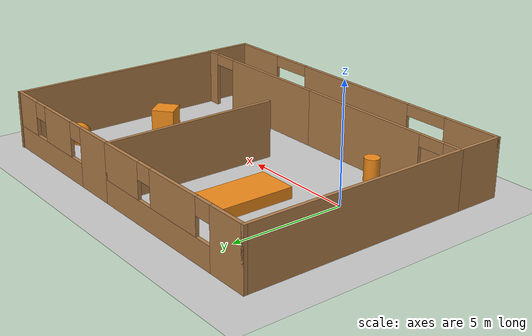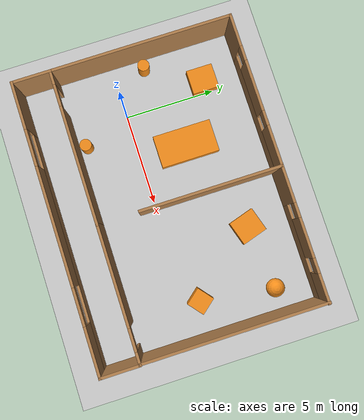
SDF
<sdf version="1.7">
 <world name="default">
  <light name="sun" type="directional">
   <pose>0 0 10 0 -0 0</pose>
   <diffuse>0.8 0.8 0.8 1</diffuse>
   <specular>0.2 0.2 0.2 1</specular>
   <attenuation>
    <range>1000</range>
    <constant>0.9</constant>
    <linear>0.01</linear>
    <quadratic>0.001</quadratic>
   </attenuation>
   <direction>-0.5 0.1 -0.9</direction>
   <spot><inner_angle>0</inner_angle><outer_angle>0</outer_angle><falloff>0</falloff></spot>
  </light>
  <model name="ground_plane">
   <static>1</static>
   <link name="link">
    <collision name="collision">
     <geometry><plane><normal>0 0 1</normal><size>100 100</size></plane></geometry>
     <surface>
      <contact><collide_bitmask>65535</collide_bitmask></contact>
      <friction><ode><mu>100</mu><mu2>50</mu2></ode></friction>
     </surface>
    </collision>
    <visual name="visual">
     <cast_shadows>0</cast_shadows>
     <geometry><plane><normal>0 0 1</normal><size>100 100</size></plane></geometry>
     <material>
      <script><uri>file://media/materials/scripts/gazebo.material</uri><name>Gazebo/Grey</name></script>
     </material>
    </visual>
   </link>
  </model>
  <gravity>0 0 -9.8</gravity>
  <magnetic_field>6e-06 2.3e-05 -4.2e-05</magnetic_field>
  <atmosphere type="adiabatic"/>
  <physics type="ode">
   <max_step_size>0.001</max_step_size>
   <real_time_factor>1</real_time_factor>
   <real_time_update_rate>1000</real_time_update_rate>
  </physics>
  <scene><ambient>0.4 0.4 0.4 1</ambient><background>0.7 0.7 0.7 1</background><shadows>1</shadows></scene>
  <spherical_coordinates>
   <surface_model>EARTH_WGS84</surface_model>
   <latitude_deg>0</latitude_deg>
   <longitude_deg>0</longitude_deg>
   <elevation>0</elevation>
   <heading_deg>0</heading_deg>
  </spherical_coordinates>
  <model name="Room">
   <pose>4.85226 0.821012 0 0 -0 0</pose>
   <link name="Wall_24">
    <collision name="Wall_24_Collision">
     <geometry><box><size>10 0.15 2.5</size></box></geometry>
     <pose>0 0 1.25 0 -0 0</pose>
    </collision>
    <visual name="Wall_24_Visual">
     <pose>0 0 1.25 0 -0 0</pose>
     <geometry><box><size>10 0.15 2.5</size></box></geometry>
     <material>
      <script><uri>file://media/materials/scripts/gazebo.material</uri><name>Gazebo/Wood</name></script>
      <ambient>1 1 1 1</ambient>
     </material>
     <meta><layer>0</layer></meta>
    </visual>
    <pose>-7.80006 1.01556 0 0 -0 -1.5708</pose>
   </link>
   <link name="Wall_26">
    <pose>-3.62506 5.94056 0 0 -0 0</pose>
    <visual name="Wall_26_Visual_0">
     <pose>-3.34006 0 1.25 0 -0 0</pose>
     <geometry><box><size>1.81987 0.15 2.5</size></box></geometry>
     <material>
      <script><uri>file://media/materials/scripts/gazebo.material</uri><name>Gazebo/Wood</name></script>
      <ambient>1 1 1 1</ambient>
     </material>
     <meta><layer>0</layer></meta>
    </visual>
    <collision name="Wall_26_Collision_0">
     <geometry><box><size>1.81987 0.15 2.5</size></box></geometry>
     <pose>-3.34006 0 1.25 0 -0 0</pose>
    </collision>
    <visual name="Wall_26_Visual_1">
     <pose>0.909938 0 0.5 0 -0 0</pose>
     <geometry><box><size>6.68013 0.15 1</size></box></geometry>
     <material>
      <script><uri>file://media/materials/scripts/gazebo.material</uri><name>Gazebo/Wood</name></script>
      <ambient>1 1 1 1</ambient>
     </material>
     <meta><layer>0</layer></meta>
    </visual>
    <collision name="Wall_26_Collision_1">
     <geometry><box><size>6.68013 0.15 1</size></box></geometry>
     <pose>0.909938 0 0.5 0 -0 0</pose>
    </collision>
    <visual name="Wall_26_Visual_2">
     <pose>-0.230125 0 1.75 0 -0 0</pose>
     <geometry><box><size>2.8 0.15 1.5</size></box></geometry>
     <material>
      <script><uri>file://media/materials/scripts/gazebo.material</uri><name>Gazebo/Wood</name></script>
      <ambient>1 1 1 1</ambient>
     </material>
     <meta><layer>0</layer></meta>
    </visual>
    <collision name="Wall_26_Collision_2">
     <geometry><box><size>2.8 0.15 1.5</size></box></geometry>
     <pose>-0.230125 0 1.75 0 -0 0</pose>
    </collision>
    <visual name="Wall_26_Visual_3">
     <pose>3.10994 0 1.75 0 -0 0</pose>
     <geometry><box><size>2.28012 0.15 1.5</size></box></geometry>
     <material>
      <script><uri>file://media/materials/scripts/gazebo.material</uri><name>Gazebo/Wood</name></script>
      <ambient>1 1 1 1</ambient>
     </material>
     <meta><layer>0</layer></meta>
    </visual>
    <collision name="Wall_26_Collision_3">
     <geometry><box><size>2.28012 0.15 1.5</size></box></geometry>
     <pose>3.10994 0 1.75 0 -0 0</pose>
    </collision>
    <visual name="Wall_26_Visual_4">
     <pose>-2.03012 0 2.15 0 -0 0</pose>
     <geometry><box><size>0.8 0.15 0.7</size></box></geometry>
     <material>
      <script><uri>file://media/materials/scripts/gazebo.material</uri><name>Gazebo/Wood</name></script>
      <ambient>1 1 1 1</ambient>
     </material>
     <meta><layer>0</layer></meta>
    </visual>
    <collision name="Wall_26_Collision_4">
     <geometry><box><size>0.8 0.15 0.7</size></box></geometry>
     <pose>-2.03012 0 2.15 0 -0 0</pose>
    </collision>
    <visual name="Wall_26_Visual_5">
     <pose>1.56987 0 2.15 0 -0 0</pose>
     <geometry><box><size>0.8 0.15 0.7</size></box></geometry>
     <material>
      <script><uri>file://media/materials/scripts/gazebo.material</uri><name>Gazebo/Wood</name></script>
      <ambient>1 1 1 1</ambient>
     </material>
     <meta><layer>0</layer></meta>
    </visual>
    <collision name="Wall_26_Collision_5">
     <geometry><box><size>0.8 0.15 0.7</size></box></geometry>
     <pose>1.56987 0 2.15 0 -0 0</pose>
    </collision>
   </link>
   <link name="Wall_28">
    <pose>-3.62506 -3.90944 0 0 -0 3.14159</pose>
    <visual name="Wall_28_Visual_0">
     <pose>-1.01597 0 1.25 0 -0 0</pose>
     <geometry><box><size>6.46806 0.15 2.5</size></box></geometry>
     <material>
      <script><uri>file://media/materials/scripts/gazebo.material</uri><name>Gazebo/Wood</name></script>
      <ambient>1 1 1 1</ambient>
     </material>
     <meta><layer>0</layer></meta>
    </visual>
    <collision name="Wall_28_Collision_0">
     <geometry><box><size>6.46806 0.15 2.5</size></box></geometry>
     <pose>-1.01597 0 1.25 0 -0 0</pose>
    </collision>
    <visual name="Wall_28_Visual_1">
     <pose>3.83403 0 1.25 0 -0 0</pose>
     <geometry><box><size>0.831936 0.15 2.5</size></box></geometry>
     <material>
      <script><uri>file://media/materials/scripts/gazebo.material</uri><name>Gazebo/Wood</name></script>
      <ambient>1 1 1 1</ambient>
     </material>
     <meta><layer>0</layer></meta>
    </visual>
    <collision name="Wall_28_Collision_1">
     <geometry><box><size>0.831936 0.15 2.5</size></box></geometry>
     <pose>3.83403 0 1.25 0 -0 0</pose>
    </collision>
    <visual name="Wall_28_Visual_2">
     <pose>2.81806 0 2.25 0 -0 0</pose>
     <geometry><box><size>1.2 0.15 0.5</size></box></geometry>
     <material>
      <script><uri>file://media/materials/scripts/gazebo.material</uri><name>Gazebo/Wood</name></script>
      <ambient>1 1 1 1</ambient>
     </material>
     <meta><layer>0</layer></meta>
    </visual>
    <collision name="Wall_28_Collision_2">
     <geometry><box><size>1.2 0.15 0.5</size></box></geometry>
     <pose>2.81806 0 2.25 0 -0 0</pose>
    </collision>
   </link>
   <link name="Wall_30">
    <pose>4.17319 5.94056 0 0 -0 0</pose>
    <visual name="Wall_30_Visual_0">
     <pose>-2.67524 0 1.25 0 -0 0</pose>
     <geometry><box><size>2.04601 0.15 2.5</size></box></geometry>
     <material>
      <script><uri>file://media/materials/scripts/gazebo.material</uri><name>Gazebo/Wood</name></script>
      <ambient>1 1 1 1</ambient>
     </material>
     <meta><layer>0</layer></meta>
    </visual>
    <collision name="Wall_30_Collision_0">
     <geometry><box><size>2.04601 0.15 2.5</size></box></geometry>
     <pose>-2.67524 0 1.25 0 -0 0</pose>
    </collision>
    <visual name="Wall_30_Visual_1">
     <pose>1.023 0 0.5 0 -0 0</pose>
     <geometry><box><size>5.35049 0.15 1</size></box></geometry>
     <material>
      <script><uri>file://media/materials/scripts/gazebo.material</uri><name>Gazebo/Wood</name></script>
      <ambient>1 1 1 1</ambient>
     </material>
     <meta><layer>0</layer></meta>
    </visual>
    <collision name="Wall_30_Collision_1">
     <geometry><box><size>5.35049 0.15 1</size></box></geometry>
     <pose>1.023 0 0.5 0 -0 0</pose>
    </collision>
    <visual name="Wall_30_Visual_2">
     <pose>0.21185 0 1.75 0 -0 0</pose>
     <geometry><box><size>2.12818 0.15 1.5</size></box></geometry>
     <material>
      <script><uri>file://media/materials/scripts/gazebo.material</uri><name>Gazebo/Wood</name></script>
      <ambient>1 1 1 1</ambient>
     </material>
     <meta><layer>0</layer></meta>
    </visual>
    <collision name="Wall_30_Collision_2">
     <geometry><box><size>2.12818 0.15 1.5</size></box></geometry>
     <pose>0.21185 0 1.75 0 -0 0</pose>
    </collision>
    <visual name="Wall_30_Visual_3">
     <pose>2.88709 0 1.75 0 -0 0</pose>
     <geometry><box><size>1.62231 0.15 1.5</size></box></geometry>
     <material>
      <script><uri>file://media/materials/scripts/gazebo.material</uri><name>Gazebo/Wood</name></script>
      <ambient>1 1 1 1</ambient>
     </material>
     <meta><layer>0</layer></meta>
    </visual>
    <collision name="Wall_30_Collision_3">
     <geometry><box><size>1.62231 0.15 1.5</size></box></geometry>
     <pose>2.88709 0 1.75 0 -0 0</pose>
    </collision>
    <visual name="Wall_30_Visual_4">
     <pose>-1.25224 0 2.15 0 -0 0</pose>
     <geometry><box><size>0.8 0.15 0.7</size></box></geometry>
     <material>
      <script><uri>file://media/materials/scripts/gazebo.material</uri><name>Gazebo/Wood</name></script>
      <ambient>1 1 1 1</ambient>
     </material>
     <meta><layer>0</layer></meta>
    </visual>
    <collision name="Wall_30_Collision_4">
     <geometry><box><size>0.8 0.15 0.7</size></box></geometry>
     <pose>-1.25224 0 2.15 0 -0 0</pose>
    </collision>
    <visual name="Wall_30_Visual_5">
     <pose>1.67594 0 2.15 0 -0 0</pose>
     <geometry><box><size>0.8 0.15 0.7</size></box></geometry>
     <material>
      <script><uri>file://media/materials/scripts/gazebo.material</uri><name>Gazebo/Wood</name></script>
      <ambient>1 1 1 1</ambient>
     </material>
     <meta><layer>0</layer></meta>
    </visual>
    <collision name="Wall_30_Collision_5">
     <geometry><box><size>0.8 0.15 0.7</size></box></geometry>
     <pose>1.67594 0 2.15 0 -0 0</pose>
    </collision>
   </link>
   <link name="Wall_31">
    <collision name="Wall_31_Collision">
     <geometry><box><size>10 0.15 2.5</size></box></geometry>
     <pose>0 0 1.25 0 -0 0</pose>
    </collision>
    <visual name="Wall_31_Visual">
     <pose>0 0 1.25 0 -0 0</pose>
     <geometry><box><size>10 0.15 2.5</size></box></geometry>
     <material>
      <script><uri>file://media/materials/scripts/gazebo.material</uri><name>Gazebo/Wood</name></script>
      <ambient>1 1 1 1</ambient>
     </material>
     <meta><layer>0</layer></meta>
    </visual>
    <pose>7.76194 1.05006 0 0 -0 -1.5708</pose>
   </link>
   <link name="Wall_32">
    <pose>4.17319 -3.90944 0 0 -0 3.14159</pose>
    <visual name="Wall_32_Visual_0">
     <pose>-3.32697 0 1.25 0 -0 0</pose>
     <geometry><box><size>0.742563 0.15 2.5</size></box></geometry>
     <material>
      <script><uri>file://media/materials/scripts/gazebo.material</uri><name>Gazebo/Wood</name></script>
      <ambient>1 1 1 1</ambient>
     </material>
     <meta><layer>0</layer></meta>
    </visual>
    <collision name="Wall_32_Collision_0">
     <geometry><box><size>0.742563 0.15 2.5</size></box></geometry>
     <pose>-3.32697 0 1.25 0 -0 0</pose>
    </collision>
    <visual name="Wall_32_Visual_1">
     <pose>0.971281 0 1.25 0 -0 0</pose>
     <geometry><box><size>5.45394 0.15 2.5</size></box></geometry>
     <material>
      <script><uri>file://media/materials/scripts/gazebo.material</uri><name>Gazebo/Wood</name></script>
      <ambient>1 1 1 1</ambient>
     </material>
     <meta><layer>0</layer></meta>
    </visual>
    <collision name="Wall_32_Collision_1">
     <geometry><box><size>5.45394 0.15 2.5</size></box></geometry>
     <pose>0.971281 0 1.25 0 -0 0</pose>
    </collision>
    <visual name="Wall_32_Visual_2">
     <pose>-2.35569 0 2.25 0 -0 0</pose>
     <geometry><box><size>1.2 0.15 0.5</size></box></geometry>
     <material>
      <script><uri>file://media/materials/scripts/gazebo.material</uri><name>Gazebo/Wood</name></script>
      <ambient>1 1 1 1</ambient>
     </material>
     <meta><layer>0</layer></meta>
    </visual>
    <collision name="Wall_32_Collision_2">
     <geometry><box><size>1.2 0.15 0.5</size></box></geometry>
     <pose>-2.35569 0 2.25 0 -0 0</pose>
    </collision>
   </link>
   <link name="Wall_34">
    <collision name="Wall_34_Collision">
     <geometry><box><size>7.75 0.15 2.5</size></box></geometry>
     <pose>0 0 1.25 0 -0 0</pose>
    </collision>
    <visual name="Wall_34_Visual">
     <pose>0 0 1.25 0 -0 0</pose>
     <geometry><box><size>7.75 0.15 2.5</size></box></geometry>
     <material>
      <script><uri>file://media/materials/scripts/gazebo.material</uri><name>Gazebo/Wood</name></script>
      <ambient>1 1 1 1</ambient>
     </material>
     <meta><layer>0</layer></meta>
    </visual>
    <pose>0.549937 2.14056 0 0 -0 -1.5708</pose>
   </link>
   <link name="Wall_36">
    <collision name="Wall_36_Collision">
     <geometry><box><size>2.2155 0.15 2.5</size></box></geometry>
     <pose>0 0 1.25 0 -0 0</pose>
    </collision>
    <visual name="Wall_36_Visual">
     <pose>0 0 1.25 0 -0 0</pose>
     <geometry><box><size>2.2155 0.15 2.5</size></box></geometry>
     <material>
      <script><uri>file://media/materials/scripts/gazebo.material</uri><name>Gazebo/Wood</name></script>
      <ambient>1 1 1 1</ambient>
     </material>
     <meta><layer>0</layer></meta>
    </visual>
    <pose>-7.80006 -4.94219 0 0 -0 -1.5708</pose>
   </link>
   <link name="Wall_38">
    <pose>-6.3e-05 -5.97494 0 0 -0 0</pose>
    <visual name="Wall_38_Visual_0">
     <pose>-6.55503 0 1.25 0 -0 0</pose>
     <geometry><box><size>2.63994 0.15 2.5</size></box></geometry>
     <material>
      <script><uri>file://media/materials/scripts/gazebo.material</uri><name>Gazebo/Wood</name></script>
      <ambient>1 1 1 1</ambient>
     </material>
     <meta><layer>0</layer></meta>
    </visual>
    <collision name="Wall_38_Collision_0">
     <geometry><box><size>2.63994 0.15 2.5</size></box></geometry>
     <pose>-6.55503 0 1.25 0 -0 0</pose>
    </collision>
    <visual name="Wall_38_Visual_1">
     <pose>1.31997 0 0.5 0 -0 0</pose>
     <geometry><box><size>13.1101 0.15 1</size></box></geometry>
     <material>
      <script><uri>file://media/materials/scripts/gazebo.material</uri><name>Gazebo/Wood</name></script>
      <ambient>1 1 1 1</ambient>
     </material>
     <meta><layer>0</layer></meta>
    </visual>
    <collision name="Wall_38_Collision_1">
     <geometry><box><size>13.1101 0.15 1</size></box></geometry>
     <pose>1.31997 0 0.5 0 -0 0</pose>
    </collision>
    <visual name="Wall_38_Visual_2">
     <pose>-0.026064 0 1.75 0 -0 0</pose>
     <geometry><box><size>6.418 0.15 1.5</size></box></geometry>
     <material>
      <script><uri>file://media/materials/scripts/gazebo.material</uri><name>Gazebo/Wood</name></script>
      <ambient>1 1 1 1</ambient>
     </material>
     <meta><layer>0</layer></meta>
    </visual>
    <collision name="Wall_38_Collision_2">
     <geometry><box><size>6.418 0.15 1.5</size></box></geometry>
     <pose>-0.026064 0 1.75 0 -0 0</pose>
    </collision>
    <visual name="Wall_38_Visual_3">
     <pose>6.52897 0 1.75 0 -0 0</pose>
     <geometry><box><size>2.69206 0.15 1.5</size></box></geometry>
     <material>
      <script><uri>file://media/materials/scripts/gazebo.material</uri><name>Gazebo/Wood</name></script>
      <ambient>1 1 1 1</ambient>
     </material>
     <meta><layer>0</layer></meta>
    </visual>
    <collision name="Wall_38_Collision_3">
     <geometry><box><size>2.69206 0.15 1.5</size></box></geometry>
     <pose>6.52897 0 1.75 0 -0 0</pose>
    </collision>
    <visual name="Wall_38_Visual_4">
     <pose>-4.23506 0 2.25 0 -0 0</pose>
     <geometry><box><size>2 0.15 0.5</size></box></geometry>
     <material>
      <script><uri>file://media/materials/scripts/gazebo.material</uri><name>Gazebo/Wood</name></script>
      <ambient>1 1 1 1</ambient>
     </material>
     <meta><layer>0</layer></meta>
    </visual>
    <collision name="Wall_38_Collision_4">
     <geometry><box><size>2 0.15 0.5</size></box></geometry>
     <pose>-4.23506 0 2.25 0 -0 0</pose>
    </collision>
    <visual name="Wall_38_Visual_5">
     <pose>4.18294 0 2.25 0 -0 0</pose>
     <geometry><box><size>2 0.15 0.5</size></box></geometry>
     <material>
      <script><uri>file://media/materials/scripts/gazebo.material</uri><name>Gazebo/Wood</name></script>
      <ambient>1 1 1 1</ambient>
     </material>
     <meta><layer>0</layer></meta>
    </visual>
    <collision name="Wall_38_Collision_5">
     <geometry><box><size>2 0.15 0.5</size></box></geometry>
     <pose>4.18294 0 2.25 0 -0 0</pose>
    </collision>
   </link>
   <link name="Wall_39">
    <collision name="Wall_39_Collision">
     <geometry><box><size>2.2155 0.15 2.5</size></box></geometry>
     <pose>0 0 1.25 0 -0 0</pose>
    </collision>
    <visual name="Wall_39_Visual">
     <pose>0 0 1.25 0 -0 0</pose>
     <geometry><box><size>2.2155 0.15 2.5</size></box></geometry>
     <material>
      <script><uri>file://media/materials/scripts/gazebo.material</uri><name>Gazebo/Wood</name></script>
      <ambient>1 1 1 1</ambient>
     </material>
     <meta><layer>0</layer></meta>
    </visual>
    <pose>7.79819 -4.94219 0 0 -0 1.57249</pose>
   </link>
   <static>1</static>
  </model>
  <model name="Obstacle">
   <link name="obstacle_0">
    <inertial>
     <mass>0.992884</mass>
     <inertia>
      <ixx>0.198766</ixx>
      <ixy>0</ixy>
      <ixz>0</ixz>
      <iyy>0.173713</iyy>
      <iyz>0</iyz>
      <izz>0.33164</izz>
     </inertia>
    </inertial>
    <pose>-5.0518 2.29246 -0.136336 0 -0 0</pose>
    <visual name="visual">
     <geometry><box><size>1.36114 1.46816 0.496781</size></box></geometry>
     <material>
      <lighting>1</lighting>
      <script><uri>file://media/materials/scripts/gazebo.material</uri><name>Gazebo/Orange</name></script>
      <shader type="pixel"><normal_map>__default__</normal_map></shader>
     </material>
    </visual>
    <collision name="collision">
     <geometry><box><size>1.36114 1.46816 0.496781</size></box></geometry>
     <surface>
      <friction>
       <ode><mu>1</mu><mu2>1</mu2><fdir1>0 0 0</fdir1><slip1>0</slip1><slip2>0</slip2></ode>
       <torsional>
        <coefficient>1</coefficient>
        <patch_radius>0</patch_radius>
        <surface_radius>0</surface_radius>
        <use_patch_radius>1</use_patch_radius>
        <ode><slip>0</slip></ode>
       </torsional>
      </friction>
      <bounce><restitution_coefficient>0</restitution_coefficient><threshold>1e+06</threshold></bounce>
      <contact>
       <collide_without_contact>0</collide_without_contact>
       <collide_without_contact_bitmask>1</collide_without_contact_bitmask>
       <collide_bitmask>1</collide_bitmask>
       <ode>
        <soft_cfm>0</soft_cfm>
        <soft_erp>0.2</soft_erp>
        <kp>1e+13</kp>
        <kd>1</kd>
        <max_vel>0.01</max_vel>
        <min_depth>0</min_depth>
       </ode>
       <bullet>
        <split_impulse>1</split_impulse>
        <split_impulse_penetration_threshold>-0.01</split_impulse_penetration_threshold>
        <soft_cfm>0</soft_cfm>
        <soft_erp>0.2</soft_erp>
        <kp>1e+13</kp>
        <kd>1</kd>
       </bullet>
      </contact>
     </surface>
    </collision>
   </link>
   <link name="osbtacle_1">
    <inertial>
     <mass>2.91646</mass>
     <inertia><ixx>2.64192</ixx><ixy>0</ixy><ixz>0</ixz><iyy>0.848377</iyy><iyz>0</iyz><izz>3.37034</izz></inertia>
    </inertial>
    <pose>-1.86879 0.307547 -0.136336 0 -0 0</pose>
    <visual name="visual">
     <geometry><box><size>1.80109 3.25939 0.496781</size></box></geometry>
     <material>
      <lighting>1</lighting>
      <script><uri>file://media/materials/scripts/gazebo.material</uri><name>Gazebo/Orange</name></script>
      <shader type="pixel"><normal_map>__default__</normal_map></shader>
     </material>
    </visual>
    <collision name="collision">
     <geometry><box><size>1.80109 3.25939 0.496781</size></box></geometry>
     <surface>
      <friction>
       <ode><mu>1</mu><mu2>1</mu2><fdir1>0 0 0</fdir1><slip1>0</slip1><slip2>0</slip2></ode>
       <torsional>
        <coefficient>1</coefficient>
        <patch_radius>0</patch_radius>
        <surface_radius>0</surface_radius>
        <use_patch_radius>1</use_patch_radius>
        <ode><slip>0</slip></ode>
       </torsional>
      </friction>
      <bounce><restitution_coefficient>0</restitution_coefficient><threshold>1e+06</threshold></bounce>
      <contact>
       <collide_without_contact>0</collide_without_contact>
       <collide_without_contact_bitmask>1</collide_without_contact_bitmask>
       <collide_bitmask>1</collide_bitmask>
       <ode>
        <soft_cfm>0</soft_cfm>
        <soft_erp>0.2</soft_erp>
        <kp>1e+13</kp>
        <kd>1</kd>
        <max_vel>0.01</max_vel>
        <min_depth>0</min_depth>
       </ode>
       <bullet>
        <split_impulse>1</split_impulse>
        <split_impulse_penetration_threshold>-0.01</split_impulse_penetration_threshold>
        <soft_cfm>0</soft_cfm>
        <soft_erp>0.2</soft_erp>
        <kp>1e+13</kp>
        <kd>1</kd>
       </bullet>
      </contact>
     </surface>
    </collision>
   </link>
   <link name="obstacle_2">
    <inertial>
     <mass>0.992884</mass>
     <inertia>
      <ixx>0.198766</ixx>
      <ixy>0</ixy>
      <ixz>0</ixz>
      <iyy>0.173713</iyy>
      <iyz>0</iyz>
      <izz>0.33164</izz>
     </inertia>
    </inertial>
    <pose>3.46428 2.09246 -0.136336 0 -0 0.300042</pose>
    <visual name="visual">
     <geometry><box><size>1.36114 1.46816 0.496781</size></box></geometry>
     <material>
      <lighting>1</lighting>
      <script><uri>file://media/materials/scripts/gazebo.material</uri><name>Gazebo/Orange</name></script>
      <shader type="pixel"><normal_map>__default__</normal_map></shader>
     </material>
    </visual>
    <collision name="collision">
     <geometry><box><size>1.36114 1.46816 0.496781</size></box></geometry>
     <surface>
      <friction>
       <ode><mu>1</mu><mu2>1</mu2><fdir1>0 0 0</fdir1><slip1>0</slip1><slip2>0</slip2></ode>
       <torsional>
        <coefficient>1</coefficient>
        <patch_radius>0</patch_radius>
        <surface_radius>0</surface_radius>
        <use_patch_radius>1</use_patch_radius>
        <ode><slip>0</slip></ode>
       </torsional>
      </friction>
      <bounce><restitution_coefficient>0</restitution_coefficient><threshold>1e+06</threshold></bounce>
      <contact>
       <collide_without_contact>0</collide_without_contact>
       <collide_without_contact_bitmask>1</collide_without_contact_bitmask>
       <collide_bitmask>1</collide_bitmask>
       <ode>
        <soft_cfm>0</soft_cfm>
        <soft_erp>0.2</soft_erp>
        <kp>1e+13</kp>
        <kd>1</kd>
        <max_vel>0.01</max_vel>
        <min_depth>0</min_depth>
       </ode>
       <bullet>
        <split_impulse>1</split_impulse>
        <split_impulse_penetration_threshold>-0.01</split_impulse_penetration_threshold>
        <soft_cfm>0</soft_cfm>
        <soft_erp>0.2</soft_erp>
        <kp>1e+13</kp>
        <kd>1</kd>
       </bullet>
      </contact>
     </surface>
    </collision>
   </link>
   <link name="obstacle_3">
    <inertial>
     <mass>0.424258</mass>
     <inertia>
      <ixx>0.0466046</ixx>
      <ixy>0</ixy>
      <ixz>0</ixz>
      <iyy>0.0466046</iyy>
      <iyz>0</iyz>
      <izz>0.0224997</izz>
     </inertia>
    </inertial>
    <pose>-6.62232 -0.626257 0.102252 0 -0 0</pose>
    <visual name="visual">
     <geometry><cylinder><radius>0.325678</radius><length>1</length></cylinder></geometry>
     <material>
      <lighting>1</lighting>
      <script><uri>file://media/materials/scripts/gazebo.material</uri><name>Gazebo/Orange</name></script>
      <shader type="pixel"/>
     </material>
    </visual>
    <collision name="collision">
     <geometry><cylinder><radius>0.325678</radius><length>1</length></cylinder></geometry>
     <surface>
      <friction>
       <ode><mu>1</mu><mu2>1</mu2><fdir1>0 0 0</fdir1><slip1>0</slip1><slip2>0</slip2></ode>
       <torsional>
        <coefficient>1</coefficient>
        <patch_radius>0</patch_radius>
        <surface_radius>0</surface_radius>
        <use_patch_radius>1</use_patch_radius>
        <ode><slip>0</slip></ode>
       </torsional>
      </friction>
      <bounce><restitution_coefficient>0</restitution_coefficient><threshold>1e+06</threshold></bounce>
      <contact>
       <collide_without_contact>0</collide_without_contact>
       <collide_without_contact_bitmask>1</collide_without_contact_bitmask>
       <collide_bitmask>1</collide_bitmask>
       <ode>
        <soft_cfm>0</soft_cfm>
        <soft_erp>0.2</soft_erp>
        <kp>1e+13</kp>
        <kd>1</kd>
        <max_vel>0.01</max_vel>
        <min_depth>0</min_depth>
       </ode>
       <bullet>
        <split_impulse>1</split_impulse>
        <split_impulse_penetration_threshold>-0.01</split_impulse_penetration_threshold>
        <soft_cfm>0</soft_cfm>
        <soft_erp>0.2</soft_erp>
        <kp>1e+13</kp>
        <kd>1</kd>
       </bullet>
      </contact>
     </surface>
    </collision>
   </link>
   <link name="obstacle_4">
    <inertial>
     <mass>0.424258</mass>
     <inertia>
      <ixx>0.0466046</ixx>
      <ixy>0</ixy>
      <ixz>0</ixz>
      <iyy>0.0466046</iyy>
      <iyz>0</iyz>
      <izz>0.0224997</izz>
     </inertia>
    </inertial>
    <pose>-3.35589 -4.92194 0.102252 0 -0 0</pose>
    <visual name="visual">
     <geometry><cylinder><radius>0.325678</radius><length>1</length></cylinder></geometry>
     <material>
      <lighting>1</lighting>
      <script><uri>file://media/materials/scripts/gazebo.material</uri><name>Gazebo/Orange</name></script>
      <shader type="pixel"/>
     </material>
    </visual>
    <collision name="collision">
     <geometry><cylinder><radius>0.325678</radius><length>1</length></cylinder></geometry>
     <surface>
      <friction>
       <ode><mu>1</mu><mu2>1</mu2><fdir1>0 0 0</fdir1><slip1>0</slip1><slip2>0</slip2></ode>
       <torsional>
        <coefficient>1</coefficient>
        <patch_radius>0</patch_radius>
        <surface_radius>0</surface_radius>
        <use_patch_radius>1</use_patch_radius>
        <ode><slip>0</slip></ode>
       </torsional>
      </friction>
      <bounce><restitution_coefficient>0</restitution_coefficient><threshold>1e+06</threshold></bounce>
      <contact>
       <collide_without_contact>0</collide_without_contact>
       <collide_without_contact_bitmask>1</collide_without_contact_bitmask>
       <collide_bitmask>1</collide_bitmask>
       <ode>
        <soft_cfm>0</soft_cfm>
        <soft_erp>0.2</soft_erp>
        <kp>1e+13</kp>
        <kd>1</kd>
        <max_vel>0.01</max_vel>
        <min_depth>0</min_depth>
       </ode>
       <bullet>
        <split_impulse>1</split_impulse>
        <split_impulse_penetration_threshold>-0.01</split_impulse_penetration_threshold>
        <soft_cfm>0</soft_cfm>
        <soft_erp>0.2</soft_erp>
        <kp>1e+13</kp>
        <kd>1</kd>
       </bullet>
      </contact>
     </surface>
    </collision>
   </link>
   <link name="obstacle_5">
    <inertial>
     <mass>1</mass>
     <inertia>
      <ixx>0.166667</ixx>
      <ixy>0</ixy>
      <ixz>0</ixz>
      <iyy>0.166667</iyy>
      <iyz>0</iyz>
      <izz>0.166667</izz>
     </inertia>
    </inertial>
    <pose>6.42497 -1.58972 0.102252 0 0 -0.880246</pose>
    <visual name="visual">
     <geometry><box><size>1 1 1</size></box></geometry>
     <material>
      <lighting>1</lighting>
      <script><uri>file://media/materials/scripts/gazebo.material</uri><name>Gazebo/Orange</name></script>
      <shader type="pixel"/>
     </material>
    </visual>
    <collision name="collision">
     <geometry><box><size>1 1 1</size></box></geometry>
     <surface>
      <friction>
       <ode><mu>1</mu><mu2>1</mu2><fdir1>0 0 0</fdir1><slip1>0</slip1><slip2>0</slip2></ode>
       <torsional>
        <coefficient>1</coefficient>
        <patch_radius>0</patch_radius>
        <surface_radius>0</surface_radius>
        <use_patch_radius>1</use_patch_radius>
        <ode><slip>0</slip></ode>
       </torsional>
      </friction>
      <bounce><restitution_coefficient>0</restitution_coefficient><threshold>1e+06</threshold></bounce>
      <contact>
       <collide_without_contact>0</collide_without_contact>
       <collide_without_contact_bitmask>1</collide_without_contact_bitmask>
       <collide_bitmask>1</collide_bitmask>
       <ode>
        <soft_cfm>0</soft_cfm>
        <soft_erp>0.2</soft_erp>
        <kp>1e+13</kp>
        <kd>1</kd>
        <max_vel>0.01</max_vel>
        <min_depth>0</min_depth>
       </ode>
       <bullet>
        <split_impulse>1</split_impulse>
        <split_impulse_penetration_threshold>-0.01</split_impulse_penetration_threshold>
        <soft_cfm>0</soft_cfm>
        <soft_erp>0.2</soft_erp>
        <kp>1e+13</kp>
        <kd>1</kd>
       </bullet>
      </contact>
     </surface>
    </collision>
   </link>
   <link name="obstacle_6">
    <inertial>
     <mass>1</mass>
     <inertia><ixx>0.1</ixx><ixy>0</ixy><ixz>0</ixz><iyy>0.1</iyy><iyz>0</iyz><izz>0.1</izz></inertia>
    </inertial>
    <pose>7.00948 2.44545 0.102252 0 -0 0</pose>
    <visual name="visual">
     <geometry><sphere><radius>0.5</radius></sphere></geometry>
     <material>
      <lighting>1</lighting>
      <script><uri>file://media/materials/scripts/gazebo.material</uri><name>Gazebo/Orange</name></script>
      <shader type="pixel"/>
     </material>
    </visual>
    <collision name="collision">
     <geometry><sphere><radius>0.5</radius></sphere></geometry>
     <surface>
      <friction>
       <ode><mu>1</mu><mu2>1</mu2><fdir1>0 0 0</fdir1><slip1>0</slip1><slip2>0</slip2></ode>
       <torsional>
        <coefficient>1</coefficient>
        <patch_radius>0</patch_radius>
        <surface_radius>0</surface_radius>
        <use_patch_radius>1</use_patch_radius>
        <ode><slip>0</slip></ode>
       </torsional>
      </friction>
      <bounce><restitution_coefficient>0</restitution_coefficient><threshold>1e+06</threshold></bounce>
      <contact>
       <collide_without_contact>0</collide_without_contact>
       <collide_without_contact_bitmask>1</collide_without_contact_bitmask>
       <collide_bitmask>1</collide_bitmask>
       <ode>
        <soft_cfm>0</soft_cfm>
        <soft_erp>0.2</soft_erp>
        <kp>1e+13</kp>
        <kd>1</kd>
        <max_vel>0.01</max_vel>
        <min_depth>0</min_depth>
       </ode>
       <bullet>
        <split_impulse>1</split_impulse>
        <split_impulse_penetration_threshold>-0.01</split_impulse_penetration_threshold>
        <soft_cfm>0</soft_cfm>
        <soft_erp>0.2</soft_erp>
        <kp>1e+13</kp>
        <kd>1</kd>
       </bullet>
      </contact>
     </surface>
    </collision>
   </link>
   <static>0</static>
   <pose>4.35109 2.33423 0.397748 0 -0 0</pose>
  </model>
 </world>
</sdf>
